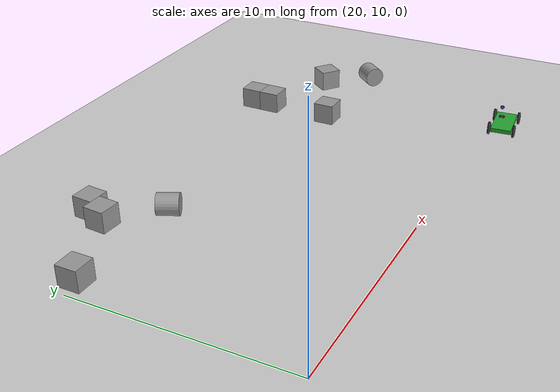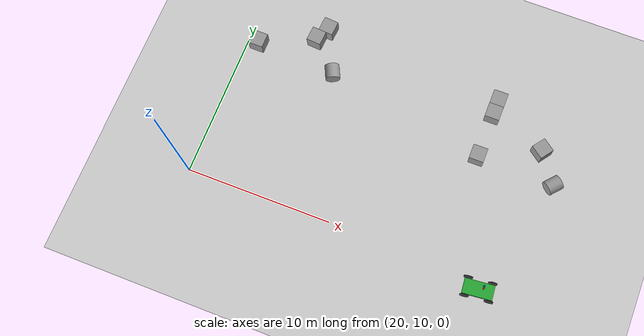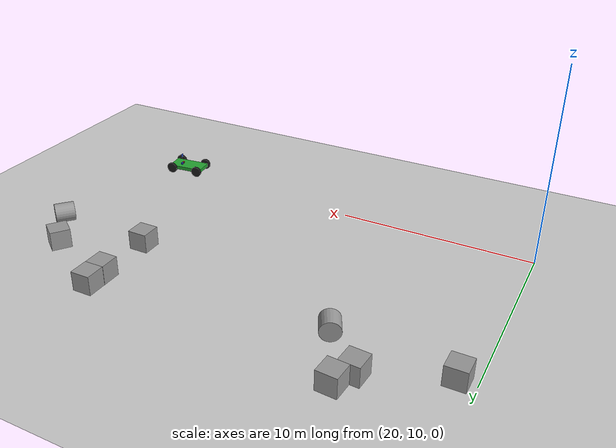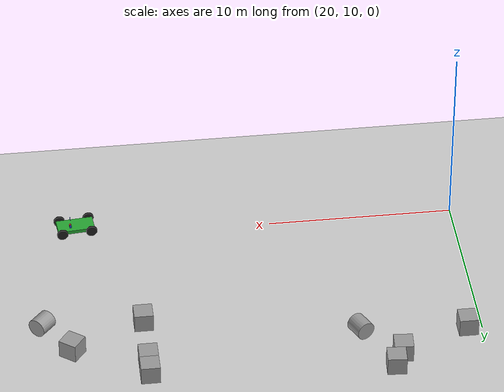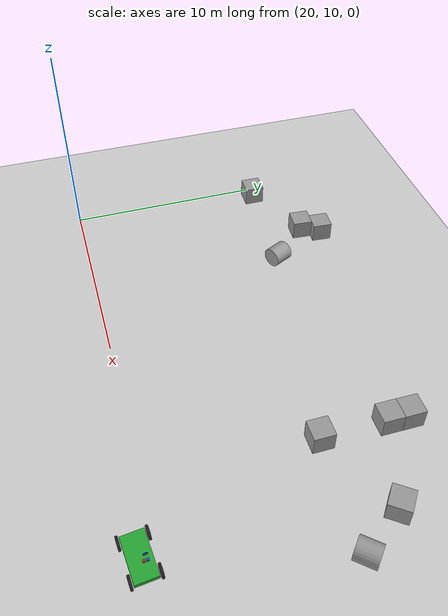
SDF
<sdf version="1.7">
 <world name="default">
  <model name="ground_plane">
   <static>1</static>
   <link name="link">
    <collision name="collision">
     <geometry><plane><normal>0 0 1</normal><size>100 100</size></plane></geometry>
     <surface>
      <contact><collide_bitmask>65535</collide_bitmask></contact>
      <friction><ode><mu>100</mu><mu2>50</mu2></ode></friction>
     </surface>
    </collision>
    <visual name="visual">
     <cast_shadows>0</cast_shadows>
     <geometry><plane><normal>0 0 1</normal><size>100 100</size></plane></geometry>
     <material>
      <script><uri>file://media/materials/scripts/gazebo.material</uri><name>Gazebo/Grey</name></script>
     </material>
    </visual>
   </link>
  </model>
  <model name="unit_box_7">
   <pose>20.8008 20.0517 0.499995 0 1e-05 -0.006917</pose>
   <link name="link">
    <inertial>
     <mass>1</mass>
     <inertia>
      <ixx>0.166667</ixx>
      <ixy>0</ixy>
      <ixz>0</ixz>
      <iyy>0.166667</iyy>
      <iyz>0</iyz>
      <izz>0.166667</izz>
     </inertia>
    </inertial>
    <collision name="collision"><geometry><box><size>1 1 1</size></box></geometry></collision>
    <visual name="visual">
     <geometry><box><size>1 1 1</size></box></geometry>
     <material>
      <script><name>Gazebo/Grey</name><uri>file://media/materials/scripts/gazebo.material</uri></script>
     </material>
    </visual>
   </link>
  </model>
  <model name="unit_cylinder_2">
   <pose>26.4034 19.7116 0.499995 1.57079 -8.2e-05 0.452273</pose>
   <link name="link">
    <inertial>
     <mass>1</mass>
     <inertia><ixx>0.145833</ixx><ixy>0</ixy><ixz>0</ixz><iyy>0.145833</iyy><iyz>0</iyz><izz>0.125</izz></inertia>
    </inertial>
    <collision name="collision">
     <geometry><cylinder><radius>0.5</radius><length>1</length></cylinder></geometry>
    </collision>
    <visual name="visual">
     <geometry><cylinder><radius>0.5</radius><length>1</length></cylinder></geometry>
     <material>
      <script><name>Gazebo/Grey</name><uri>file://media/materials/scripts/gazebo.material</uri></script>
     </material>
    </visual>
   </link>
  </model>
  <model name="unit_box_8">
   <pose>24.9688 22.6343 0.499995 -1e-05 -0 -0.073436</pose>
   <link name="link">
    <inertial>
     <mass>1</mass>
     <inertia>
      <ixx>0.166667</ixx>
      <ixy>0</ixy>
      <ixz>0</ixz>
      <iyy>0.166667</iyy>
      <iyz>0</iyz>
      <izz>0.166667</izz>
     </inertia>
    </inertial>
    <collision name="collision"><geometry><box><size>1 1 1</size></box></geometry></collision>
    <visual name="visual">
     <geometry><box><size>1 1 1</size></box></geometry>
     <material>
      <script><name>Gazebo/Grey</name><uri>file://media/materials/scripts/gazebo.material</uri></script>
     </material>
    </visual>
   </link>
  </model>
  <model name="unit_box_9">
   <pose>24.4644 21.6687 0.5 0 -0 -0.073435</pose>
   <link name="link">
    <inertial>
     <mass>1</mass>
     <inertia>
      <ixx>0.166667</ixx>
      <ixy>0</ixy>
      <ixz>0</ixz>
      <iyy>0.166667</iyy>
      <iyz>0</iyz>
      <izz>0.166667</izz>
     </inertia>
    </inertial>
    <collision name="collision"><geometry><box><size>1 1 1</size></box></geometry></collision>
    <visual name="visual">
     <geometry><box><size>1 1 1</size></box></geometry>
     <material>
      <script><name>Gazebo/Grey</name><uri>file://media/materials/scripts/gazebo.material</uri></script>
     </material>
    </visual>
   </link>
  </model>
  <model name="unit_box_2">
   <pose>37.6485 21.7974 0.499995 0 -1e-05 5e-06</pose>
   <link name="link">
    <inertial>
     <mass>1</mass>
     <inertia>
      <ixx>0.166667</ixx>
      <ixy>0</ixy>
      <ixz>0</ixz>
      <iyy>0.166667</iyy>
      <iyz>0</iyz>
      <izz>0.166667</izz>
     </inertia>
    </inertial>
    <collision name="collision"><geometry><box><size>1 1 1</size></box></geometry></collision>
    <visual name="visual">
     <geometry><box><size>1 1 1</size></box></geometry>
     <material>
      <script><name>Gazebo/Grey</name><uri>file://media/materials/scripts/gazebo.material</uri></script>
     </material>
    </visual>
   </link>
  </model>
  <model name="unit_box_10">
   <pose>37.6409 20.7973 0.499995 1e-05 -0 -5e-06</pose>
   <link name="link">
    <inertial>
     <mass>1</mass>
     <inertia>
      <ixx>0.166667</ixx>
      <ixy>0</ixy>
      <ixz>0</ixz>
      <iyy>0.166667</iyy>
      <iyz>0</iyz>
      <izz>0.166667</izz>
     </inertia>
    </inertial>
    <collision name="collision"><geometry><box><size>1 1 1</size></box></geometry></collision>
    <visual name="visual">
     <geometry><box><size>1 1 1</size></box></geometry>
     <material>
      <script><name>Gazebo/Grey</name><uri>file://media/materials/scripts/gazebo.material</uri></script>
     </material>
    </visual>
   </link>
  </model>
  <model name="unit_box_12">
   <pose>37.6194 17.6514 0.499996 7e-06 0 -1e-06</pose>
   <link name="link">
    <inertial>
     <mass>1</mass>
     <inertia>
      <ixx>0.166667</ixx>
      <ixy>0</ixy>
      <ixz>0</ixz>
      <iyy>0.166667</iyy>
      <iyz>0</iyz>
      <izz>0.166667</izz>
     </inertia>
    </inertial>
    <collision name="collision"><geometry><box><size>1 1 1</size></box></geometry></collision>
    <visual name="visual">
     <geometry><box><size>1 1 1</size></box></geometry>
     <material>
      <script><name>Gazebo/Grey</name><uri>file://media/materials/scripts/gazebo.material</uri></script>
     </material>
    </visual>
   </link>
  </model>
  <model name="unit_cylinder_3">
   <pose>42.9035 17.4747 0.499995 1.57079 -0.003643 -0.720105</pose>
   <link name="link">
    <inertial>
     <mass>1</mass>
     <inertia><ixx>0.145833</ixx><ixy>0</ixy><ixz>0</ixz><iyy>0.145833</iyy><iyz>0</iyz><izz>0.125</izz></inertia>
    </inertial>
    <collision name="collision">
     <geometry><cylinder><radius>0.5</radius><length>1</length></cylinder></geometry>
    </collision>
    <visual name="visual">
     <geometry><cylinder><radius>0.5</radius><length>1</length></cylinder></geometry>
     <material>
      <script><name>Gazebo/Grey</name><uri>file://media/materials/scripts/gazebo.material</uri></script>
     </material>
    </visual>
   </link>
  </model>
  <model name="unit_box_13">
   <pose>41.4736 19.4868 0.5 0 0 -0.639721</pose>
   <link name="link">
    <inertial>
     <mass>1</mass>
     <inertia>
      <ixx>0.166667</ixx>
      <ixy>0</ixy>
      <ixz>0</ixz>
      <iyy>0.166667</iyy>
      <iyz>0</iyz>
      <izz>0.166667</izz>
     </inertia>
    </inertial>
    <collision name="collision"><geometry><box><size>1 1 1</size></box></geometry></collision>
    <visual name="visual">
     <geometry><box><size>1 1 1</size></box></geometry>
     <material>
      <script><name>Gazebo/Grey</name><uri>file://media/materials/scripts/gazebo.material</uri></script>
     </material>
    </visual>
   </link>
  </model>
  <model name="car">
   <link name="chassis">
    <pose>0 0 0.3 0 -0 0</pose>
    <collision name="collision"><geometry><box><size>2 1 0.2</size></box></geometry></collision>
    <visual name="visual">
     <geometry><box><size>2 1 0.2</size></box></geometry>
     <material>
      <script><uri>file://media/materials/scripts/gazebo.material</uri><name>Gazebo/Green</name></script>
     </material>
    </visual>
    <inertial>
     <inertia><ixx>1</ixx><ixy>0</ixy><ixz>0</ixz><iyy>1</iyy><iyz>0</iyz><izz>1</izz></inertia>
     <mass>1</mass>
    </inertial>
   </link>
   <link name="front_left_wheel">
    <pose>0.8 0.6 0.3 -0 1.5707 1.5707</pose>
    <collision name="collision">
     <geometry><cylinder><radius>0.3</radius><length>0.1</length></cylinder></geometry>
    </collision>
    <visual name="visual">
     <geometry><cylinder><radius>0.3</radius><length>0.1</length></cylinder></geometry>
     <material>
      <script><uri>file://media/materials/scripts/gazebo.material</uri><name>Gazebo/Black</name></script>
     </material>
    </visual>
    <inertial>
     <inertia><ixx>1</ixx><ixy>0</ixy><ixz>0</ixz><iyy>1</iyy><iyz>0</iyz><izz>1</izz></inertia>
     <mass>1</mass>
    </inertial>
   </link>
   <link name="front_right_wheel">
    <pose>0.8 -0.6 0.3 -0 1.5707 1.5707</pose>
    <collision name="collision">
     <geometry><cylinder><radius>0.3</radius><length>0.1</length></cylinder></geometry>
    </collision>
    <visual name="visual">
     <geometry><cylinder><radius>0.3</radius><length>0.1</length></cylinder></geometry>
     <material>
      <script><uri>file://media/materials/scripts/gazebo.material</uri><name>Gazebo/Black</name></script>
     </material>
    </visual>
    <inertial>
     <inertia><ixx>1</ixx><ixy>0</ixy><ixz>0</ixz><iyy>1</iyy><iyz>0</iyz><izz>1</izz></inertia>
     <mass>1</mass>
    </inertial>
   </link>
   <link name="back_right_wheel">
    <pose>-0.8 -0.6 0.3 -0 1.5707 1.5707</pose>
    <collision name="collision">
     <geometry><cylinder><radius>0.3</radius><length>0.1</length></cylinder></geometry>
    </collision>
    <visual name="visual">
     <geometry><cylinder><radius>0.3</radius><length>0.1</length></cylinder></geometry>
     <material>
      <script><uri>file://media/materials/scripts/gazebo.material</uri><name>Gazebo/Black</name></script>
     </material>
    </visual>
    <inertial>
     <inertia><ixx>1</ixx><ixy>0</ixy><ixz>0</ixz><iyy>1</iyy><iyz>0</iyz><izz>1</izz></inertia>
     <mass>1</mass>
    </inertial>
   </link>
   <link name="back_left_wheel">
    <pose>-0.8 0.6 0.3 -0 1.5707 1.5707</pose>
    <collision name="collision">
     <geometry><cylinder><radius>0.3</radius><length>0.1</length></cylinder></geometry>
    </collision>
    <visual name="visual">
     <geometry><cylinder><radius>0.3</radius><length>0.1</length></cylinder></geometry>
     <material>
      <script><uri>file://media/materials/scripts/gazebo.material</uri><name>Gazebo/Black</name></script>
     </material>
    </visual>
    <inertial>
     <inertia><ixx>1</ixx><ixy>0</ixy><ixz>0</ixz><iyy>1</iyy><iyz>0</iyz><izz>1</izz></inertia>
     <mass>1</mass>
    </inertial>
   </link>
   <link name="gas_pedal">
    <pose>0.3 0.1 0.5 0 -0 0</pose>
    <collision name="collision"><geometry><box><size>0.1 0.1 0.1</size></box></geometry></collision>
    <visual name="visual">
     <geometry><box><size>0.1 0.1 0.1</size></box></geometry>
     <material>
      <script><uri>file://media/materials/scripts/gazebo.material</uri><name>Gazebo/Red</name></script>
     </material>
    </visual>
    <inertial>
     <inertia><ixx>1</ixx><ixy>0</ixy><ixz>0</ixz><iyy>1</iyy><iyz>0</iyz><izz>1</izz></inertia>
     <mass>1</mass>
    </inertial>
   </link>
   <link name="brake_pedal">
    <pose>0.3 0.25 0.5 0 -0 0</pose>
    <collision name="collision"><geometry><box><size>0.1 0.1 0.1</size></box></geometry></collision>
    <visual name="visual">
     <geometry><box><size>0.1 0.1 0.1</size></box></geometry>
     <material>
      <script><uri>file://media/materials/scripts/gazebo.material</uri><name>Gazebo/Blue</name></script>
     </material>
    </visual>
    <inertial>
     <inertia><ixx>1</ixx><ixy>0</ixy><ixz>0</ixz><iyy>1</iyy><iyz>0</iyz><izz>1</izz></inertia>
     <mass>1</mass>
    </inertial>
   </link>
   <link name="steering_wheel">
    <pose>0.3 0.2 1 0 1.5707 0</pose>
    <collision name="collision">
     <geometry><cylinder><radius>0.1</radius><length>0.01</length></cylinder></geometry>
    </collision>
    <visual name="visual">
     <geometry><cylinder><radius>0.1</radius><length>0.01</length></cylinder></geometry>
     <material>
      <script><uri>file://media/materials/scripts/gazebo.material</uri><name>Gazebo/Blue</name></script>
     </material>
    </visual>
    <inertial>
     <inertia><ixx>1</ixx><ixy>0</ixy><ixz>0</ixz><iyy>1</iyy><iyz>0</iyz><izz>1</izz></inertia>
     <mass>1</mass>
    </inertial>
   </link>
   <joint name="gas_joint" type="prismatic">
    <parent>chassis</parent>
    <child>gas_pedal</child>
    <axis>
     <xyz expressed_in="__model__">1 0 0</xyz>
     <limit><lower>0</lower><upper>0.2</upper></limit>
     <dynamics><spring_reference>0</spring_reference><spring_stiffness>0</spring_stiffness></dynamics>
    </axis>
   </joint>
   <joint name="brake_joint" type="prismatic">
    <parent>chassis</parent>
    <child>brake_pedal</child>
    <axis>
     <xyz expressed_in="__model__">1 0 0</xyz>
     <limit><lower>0</lower><upper>0.2</upper></limit>
     <dynamics><spring_reference>0</spring_reference><spring_stiffness>0</spring_stiffness></dynamics>
    </axis>
   </joint>
   <joint name="steering_joint" type="revolute">
    <parent>chassis</parent>
    <child>steering_wheel</child>
    <axis>
     <xyz expressed_in="__model__">1 0 0</xyz>
     <limit><lower>-7.853</lower><upper>7.853</upper></limit>
     <dynamics><spring_reference>0</spring_reference><spring_stiffness>0</spring_stiffness></dynamics>
    </axis>
   </joint>
   <joint name="front_left_joint" type="revolute2">
    <parent>chassis</parent>
    <child>front_left_wheel</child>
    <axis>
     <xyz expressed_in="__model__">0 0 1</xyz>
     <limit><lower>6.99228e-06</lower><upper>6.99228e-06</upper></limit>
     <dynamics><spring_reference>0</spring_reference><spring_stiffness>0</spring_stiffness></dynamics>
    </axis>
    <axis2>
     <xyz expressed_in="__model__">0 1 0</xyz>
     <limit><upper>1e+16</upper><lower>-1e+16</lower></limit>
     <dynamics><spring_reference>0</spring_reference><spring_stiffness>0</spring_stiffness></dynamics>
    </axis2>
    <physics><ode><limit><cfm>0</cfm><erp>0.9</erp></limit></ode></physics>
   </joint>
   <joint name="front_right_joint" type="revolute2">
    <parent>chassis</parent>
    <child>front_right_wheel</child>
    <axis>
     <xyz expressed_in="__model__">0 0 1</xyz>
     <limit><lower>6.99228e-06</lower><upper>6.99228e-06</upper></limit>
     <dynamics><spring_reference>0</spring_reference><spring_stiffness>0</spring_stiffness></dynamics>
    </axis>
    <axis2>
     <xyz expressed_in="__model__">0 1 0</xyz>
     <limit><upper>1e+16</upper><lower>-1e+16</lower></limit>
     <dynamics><spring_reference>0</spring_reference><spring_stiffness>0</spring_stiffness></dynamics>
    </axis2>
    <physics><ode><limit><cfm>0</cfm><erp>0.9</erp></limit></ode></physics>
   </joint>
   <joint name="back_right_joint" type="revolute2">
    <parent>chassis</parent>
    <child>back_right_wheel</child>
    <axis>
     <xyz expressed_in="__model__">0 0 1</xyz>
     <limit><lower>0</lower><upper>0</upper></limit>
     <dynamics><spring_reference>0</spring_reference><spring_stiffness>0</spring_stiffness></dynamics>
    </axis>
    <axis2>
     <xyz expressed_in="__model__">0 1 0</xyz>
     <limit><upper>1e+16</upper><lower>-1e+16</lower></limit>
     <dynamics><spring_reference>0</spring_reference><spring_stiffness>0</spring_stiffness></dynamics>
    </axis2>
    <physics><ode><limit><cfm>0</cfm><erp>0.9</erp></limit></ode></physics>
   </joint>
   <joint name="back_left_joint" type="revolute2">
    <parent>chassis</parent>
    <child>back_left_wheel</child>
    <axis>
     <xyz expressed_in="__model__">0 0 1</xyz>
     <limit><lower>0</lower><upper>0</upper></limit>
     <dynamics><spring_reference>0</spring_reference><spring_stiffness>0</spring_stiffness></dynamics>
    </axis>
    <axis2>
     <xyz expressed_in="__model__">0 1 0</xyz>
     <limit><upper>1e+16</upper><lower>-1e+16</lower></limit>
     <dynamics><spring_reference>0</spring_reference><spring_stiffness>0</spring_stiffness></dynamics>
    </axis2>
    <physics><ode><limit><cfm>0</cfm><erp>0.9</erp></limit></ode></physics>
   </joint>
   <plugin name="vehicle" filename="libVehiclePlugin.so">
    <front_left>front_left_joint</front_left>
    <front_right>front_right_joint</front_right>
    <back_left>back_left_joint</back_left>
    <back_right>back_right_joint</back_right>
    <gas>gas_joint</gas>
    <brake>brake_joint</brake>
    <steering>steering_joint</steering>
    <front_power>10</front_power>
    <rear_power>10</rear_power>
    <tire_angle_range>0.5</tire_angle_range>
    <max_speed>10</max_speed>
    <aero_load>0.1</aero_load>
   </plugin>
   <pose>40.5696 9.28111 8e-06 -2e-06 5e-06 0.096123</pose>
  </model>
 </world>
</sdf>
